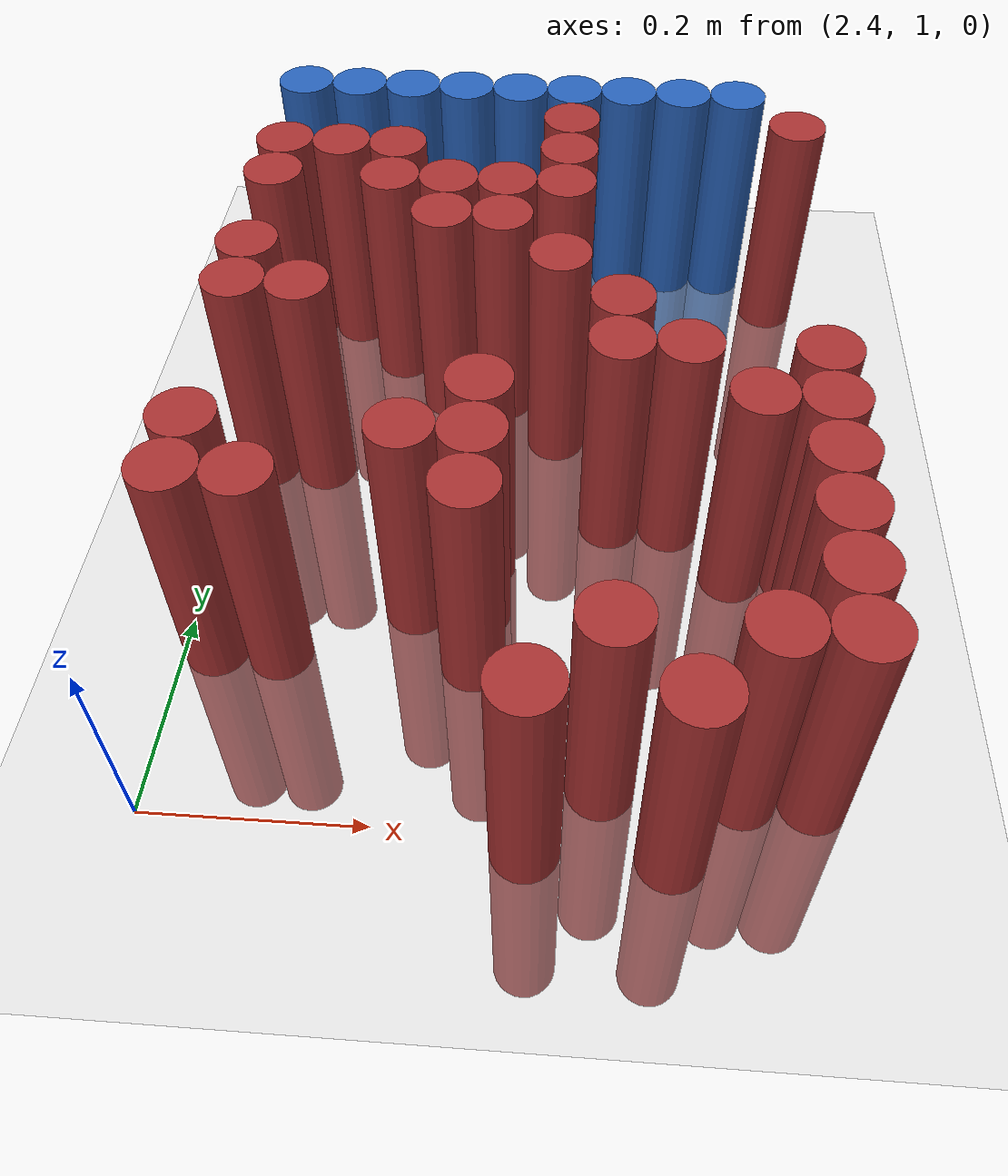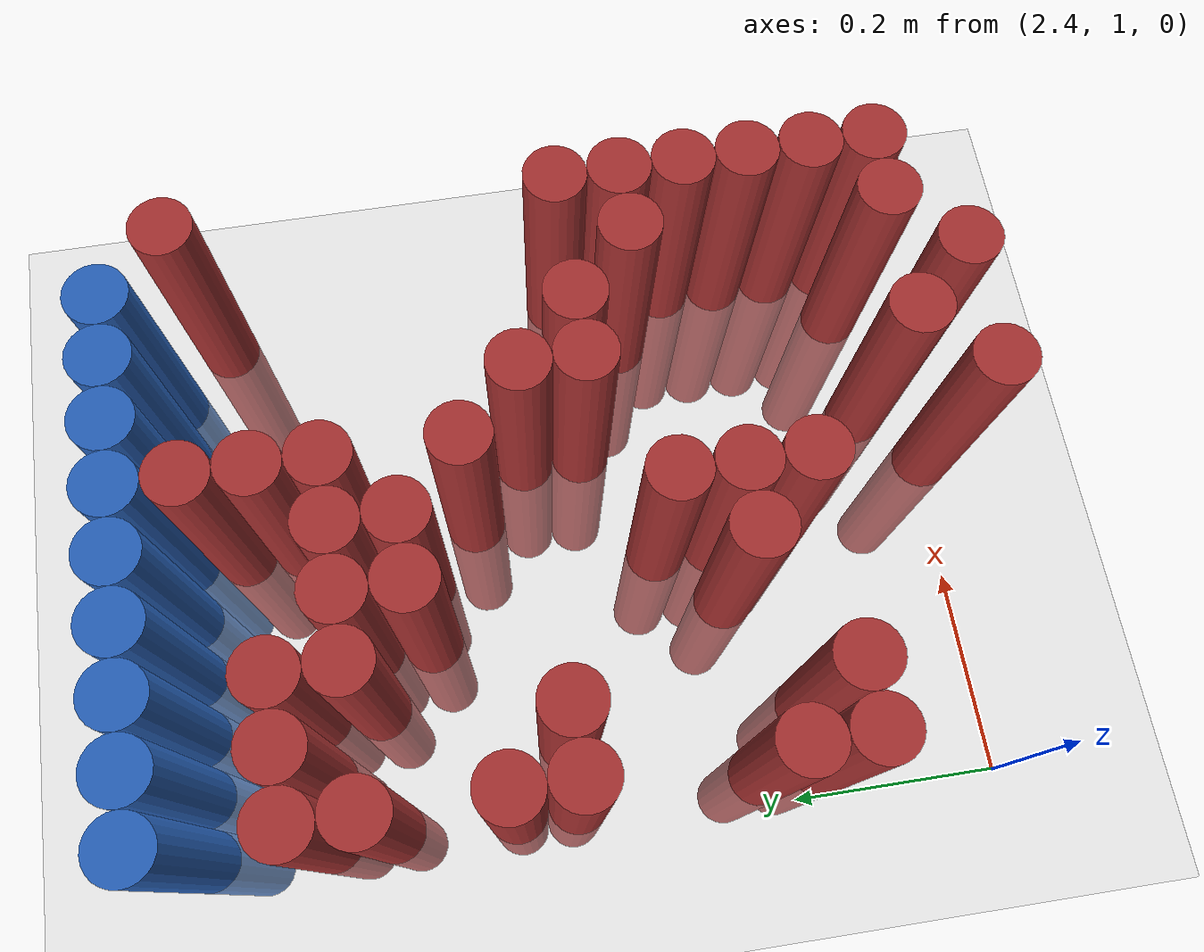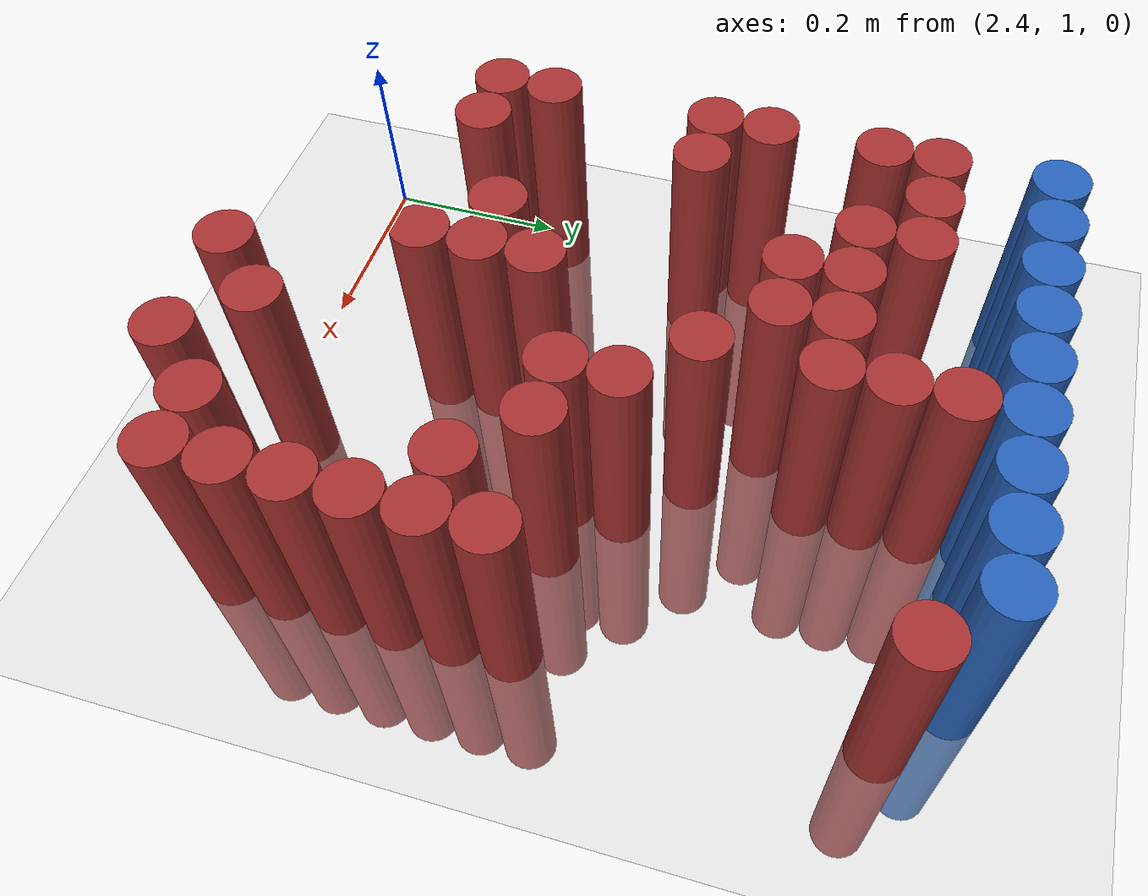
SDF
<sdf version="1.6">
 <world name="default">
  <model name="ground_plane">
   <static>1</static>
   <link name="link">
    <collision name="collision">
     <geometry><plane><normal>0 0 1</normal><size>100 100</size></plane></geometry>
     <surface><friction><ode><mu>100</mu><mu2>50</mu2></ode></friction></surface>
    </collision>
    <visual name="visual">
     <cast_shadows>0</cast_shadows>
     <geometry><plane><normal>0 0 1</normal><size>100 100</size></plane></geometry>
     <material>
      <script><uri>file://media/materials/scripts/gazebo.material</uri><name>Gazebo/Grey</name></script>
     </material>
    </visual>
   </link>
  </model>
  <model name="unit_cylinder_101">
   <static>1</static>
   <pose>2.430000 1.770000 0.000000 0.000000 0.000000 0.000000</pose>
   <link name="link">
    <inertial>
     <mass>1</mass>
     <inertia><ixx>0.145833</ixx><ixy>0</ixy><ixz>0</ixz><iyy>0.145833</iyy><iyz>0</iyz><izz>0.125</izz></inertia>
    </inertial>
    <collision name="collision">
     <geometry><cylinder><radius>0.030000</radius><length>0.5</length></cylinder></geometry>
    </collision>
    <visual name="visual">
     <geometry><cylinder><radius>0.030000</radius><length>0.5</length></cylinder></geometry>
     <material>
      <ambient>0.152000 0.379000 0.720000 1</ambient>
      <diffuse>0.152000 0.379000 0.720000 1</diffuse>
     </material>
     <material>
      <script><name>Gazebo/Grey</name><uri>file://media/materials/scripts/gazebo.material</uri></script>
     </material>
    </visual>
   </link>
  </model>
  <model name="unit_cylinder_102">
   <static>1</static>
   <pose>2.490000 1.770000 0.000000 0.000000 0.000000 0.000000</pose>
   <link name="link">
    <inertial>
     <mass>1</mass>
     <inertia><ixx>0.145833</ixx><ixy>0</ixy><ixz>0</ixz><iyy>0.145833</iyy><iyz>0</iyz><izz>0.125</izz></inertia>
    </inertial>
    <collision name="collision">
     <geometry><cylinder><radius>0.030000</radius><length>0.5</length></cylinder></geometry>
    </collision>
    <visual name="visual">
     <geometry><cylinder><radius>0.030000</radius><length>0.5</length></cylinder></geometry>
     <material>
      <ambient>0.152000 0.379000 0.720000 1</ambient>
      <diffuse>0.152000 0.379000 0.720000 1</diffuse>
     </material>
     <material>
      <script><name>Gazebo/Grey</name><uri>file://media/materials/scripts/gazebo.material</uri></script>
     </material>
    </visual>
   </link>
  </model>
  <model name="unit_cylinder_103">
   <static>1</static>
   <pose>2.550000 1.770000 0.000000 0.000000 0.000000 0.000000</pose>
   <link name="link">
    <inertial>
     <mass>1</mass>
     <inertia><ixx>0.145833</ixx><ixy>0</ixy><ixz>0</ixz><iyy>0.145833</iyy><iyz>0</iyz><izz>0.125</izz></inertia>
    </inertial>
    <collision name="collision">
     <geometry><cylinder><radius>0.030000</radius><length>0.5</length></cylinder></geometry>
    </collision>
    <visual name="visual">
     <geometry><cylinder><radius>0.030000</radius><length>0.5</length></cylinder></geometry>
     <material>
      <ambient>0.152000 0.379000 0.720000 1</ambient>
      <diffuse>0.152000 0.379000 0.720000 1</diffuse>
     </material>
     <material>
      <script><name>Gazebo/Grey</name><uri>file://media/materials/scripts/gazebo.material</uri></script>
     </material>
    </visual>
   </link>
  </model>
  <model name="unit_cylinder_104">
   <static>1</static>
   <pose>2.610000 1.770000 0.000000 0.000000 0.000000 0.000000</pose>
   <link name="link">
    <inertial>
     <mass>1</mass>
     <inertia><ixx>0.145833</ixx><ixy>0</ixy><ixz>0</ixz><iyy>0.145833</iyy><iyz>0</iyz><izz>0.125</izz></inertia>
    </inertial>
    <collision name="collision">
     <geometry><cylinder><radius>0.030000</radius><length>0.5</length></cylinder></geometry>
    </collision>
    <visual name="visual">
     <geometry><cylinder><radius>0.030000</radius><length>0.5</length></cylinder></geometry>
     <material>
      <ambient>0.152000 0.379000 0.720000 1</ambient>
      <diffuse>0.152000 0.379000 0.720000 1</diffuse>
     </material>
     <material>
      <script><name>Gazebo/Grey</name><uri>file://media/materials/scripts/gazebo.material</uri></script>
     </material>
    </visual>
   </link>
  </model>
  <model name="unit_cylinder_105">
   <static>1</static>
   <pose>2.670000 1.770000 0.000000 0.000000 0.000000 0.000000</pose>
   <link name="link">
    <inertial>
     <mass>1</mass>
     <inertia><ixx>0.145833</ixx><ixy>0</ixy><ixz>0</ixz><iyy>0.145833</iyy><iyz>0</iyz><izz>0.125</izz></inertia>
    </inertial>
    <collision name="collision">
     <geometry><cylinder><radius>0.030000</radius><length>0.5</length></cylinder></geometry>
    </collision>
    <visual name="visual">
     <geometry><cylinder><radius>0.030000</radius><length>0.5</length></cylinder></geometry>
     <material>
      <ambient>0.152000 0.379000 0.720000 1</ambient>
      <diffuse>0.152000 0.379000 0.720000 1</diffuse>
     </material>
     <material>
      <script><name>Gazebo/Grey</name><uri>file://media/materials/scripts/gazebo.material</uri></script>
     </material>
    </visual>
   </link>
  </model>
  <model name="unit_cylinder_106">
   <static>1</static>
   <pose>2.730000 1.770000 0.000000 0.000000 0.000000 0.000000</pose>
   <link name="link">
    <inertial>
     <mass>1</mass>
     <inertia><ixx>0.145833</ixx><ixy>0</ixy><ixz>0</ixz><iyy>0.145833</iyy><iyz>0</iyz><izz>0.125</izz></inertia>
    </inertial>
    <collision name="collision">
     <geometry><cylinder><radius>0.030000</radius><length>0.5</length></cylinder></geometry>
    </collision>
    <visual name="visual">
     <geometry><cylinder><radius>0.030000</radius><length>0.5</length></cylinder></geometry>
     <material>
      <ambient>0.152000 0.379000 0.720000 1</ambient>
      <diffuse>0.152000 0.379000 0.720000 1</diffuse>
     </material>
     <material>
      <script><name>Gazebo/Grey</name><uri>file://media/materials/scripts/gazebo.material</uri></script>
     </material>
    </visual>
   </link>
  </model>
  <model name="unit_cylinder_107">
   <static>1</static>
   <pose>2.790000 1.770000 0.000000 0.000000 0.000000 0.000000</pose>
   <link name="link">
    <inertial>
     <mass>1</mass>
     <inertia><ixx>0.145833</ixx><ixy>0</ixy><ixz>0</ixz><iyy>0.145833</iyy><iyz>0</iyz><izz>0.125</izz></inertia>
    </inertial>
    <collision name="collision">
     <geometry><cylinder><radius>0.030000</radius><length>0.5</length></cylinder></geometry>
    </collision>
    <visual name="visual">
     <geometry><cylinder><radius>0.030000</radius><length>0.5</length></cylinder></geometry>
     <material>
      <ambient>0.152000 0.379000 0.720000 1</ambient>
      <diffuse>0.152000 0.379000 0.720000 1</diffuse>
     </material>
     <material>
      <script><name>Gazebo/Grey</name><uri>file://media/materials/scripts/gazebo.material</uri></script>
     </material>
    </visual>
   </link>
  </model>
  <model name="unit_cylinder_108">
   <static>1</static>
   <pose>2.850000 1.770000 0.000000 0.000000 0.000000 0.000000</pose>
   <link name="link">
    <inertial>
     <mass>1</mass>
     <inertia><ixx>0.145833</ixx><ixy>0</ixy><ixz>0</ixz><iyy>0.145833</iyy><iyz>0</iyz><izz>0.125</izz></inertia>
    </inertial>
    <collision name="collision">
     <geometry><cylinder><radius>0.030000</radius><length>0.5</length></cylinder></geometry>
    </collision>
    <visual name="visual">
     <geometry><cylinder><radius>0.030000</radius><length>0.5</length></cylinder></geometry>
     <material>
      <ambient>0.152000 0.379000 0.720000 1</ambient>
      <diffuse>0.152000 0.379000 0.720000 1</diffuse>
     </material>
     <material>
      <script><name>Gazebo/Grey</name><uri>file://media/materials/scripts/gazebo.material</uri></script>
     </material>
    </visual>
   </link>
  </model>
  <model name="unit_cylinder_109">
   <static>1</static>
   <pose>2.910000 1.770000 0.000000 0.000000 0.000000 0.000000</pose>
   <link name="link">
    <inertial>
     <mass>1</mass>
     <inertia><ixx>0.145833</ixx><ixy>0</ixy><ixz>0</ixz><iyy>0.145833</iyy><iyz>0</iyz><izz>0.125</izz></inertia>
    </inertial>
    <collision name="collision">
     <geometry><cylinder><radius>0.030000</radius><length>0.5</length></cylinder></geometry>
    </collision>
    <visual name="visual">
     <geometry><cylinder><radius>0.030000</radius><length>0.5</length></cylinder></geometry>
     <material>
      <ambient>0.152000 0.379000 0.720000 1</ambient>
      <diffuse>0.152000 0.379000 0.720000 1</diffuse>
     </material>
     <material>
      <script><name>Gazebo/Grey</name><uri>file://media/materials/scripts/gazebo.material</uri></script>
     </material>
    </visual>
   </link>
  </model>
  <model name="unit_cylinder_127">
   <static>1</static>
   <pose>2.730000 1.710000 0.000000 0.000000 0.000000 0.000000</pose>
   <link name="link">
    <inertial>
     <mass>1</mass>
     <inertia><ixx>0.145833</ixx><ixy>0</ixy><ixz>0</ixz><iyy>0.145833</iyy><iyz>0</iyz><izz>0.125</izz></inertia>
    </inertial>
    <collision name="collision">
     <geometry><cylinder><radius>0.030000</radius><length>0.5</length></cylinder></geometry>
    </collision>
    <visual name="visual">
     <geometry><cylinder><radius>0.030000</radius><length>0.5</length></cylinder></geometry>
     <material>
      <ambient>0.648000 0.192000 0.192000 1</ambient>
      <diffuse>0.648000 0.192000 0.192000 1</diffuse>
     </material>
     <material>
      <script><name>Gazebo/Grey</name><uri>file://media/materials/scripts/gazebo.material</uri></script>
     </material>
    </visual>
   </link>
  </model>
  <model name="unit_cylinder_128">
   <static>1</static>
   <pose>2.970000 1.710000 0.000000 0.000000 0.000000 0.000000</pose>
   <link name="link">
    <inertial>
     <mass>1</mass>
     <inertia><ixx>0.145833</ixx><ixy>0</ixy><ixz>0</ixz><iyy>0.145833</iyy><iyz>0</iyz><izz>0.125</izz></inertia>
    </inertial>
    <collision name="collision">
     <geometry><cylinder><radius>0.030000</radius><length>0.5</length></cylinder></geometry>
    </collision>
    <visual name="visual">
     <geometry><cylinder><radius>0.030000</radius><length>0.5</length></cylinder></geometry>
     <material>
      <ambient>0.648000 0.192000 0.192000 1</ambient>
      <diffuse>0.648000 0.192000 0.192000 1</diffuse>
     </material>
     <material>
      <script><name>Gazebo/Grey</name><uri>file://media/materials/scripts/gazebo.material</uri></script>
     </material>
    </visual>
   </link>
  </model>
  <model name="unit_cylinder_136">
   <static>1</static>
   <pose>2.430000 1.650000 0.000000 0.000000 0.000000 0.000000</pose>
   <link name="link">
    <inertial>
     <mass>1</mass>
     <inertia><ixx>0.145833</ixx><ixy>0</ixy><ixz>0</ixz><iyy>0.145833</iyy><iyz>0</iyz><izz>0.125</izz></inertia>
    </inertial>
    <collision name="collision">
     <geometry><cylinder><radius>0.030000</radius><length>0.5</length></cylinder></geometry>
    </collision>
    <visual name="visual">
     <geometry><cylinder><radius>0.030000</radius><length>0.5</length></cylinder></geometry>
     <material>
      <ambient>0.648000 0.192000 0.192000 1</ambient>
      <diffuse>0.648000 0.192000 0.192000 1</diffuse>
     </material>
     <material>
      <script><name>Gazebo/Grey</name><uri>file://media/materials/scripts/gazebo.material</uri></script>
     </material>
    </visual>
   </link>
  </model>
  <model name="unit_cylinder_137">
   <static>1</static>
   <pose>2.490000 1.650000 0.000000 0.000000 0.000000 0.000000</pose>
   <link name="link">
    <inertial>
     <mass>1</mass>
     <inertia><ixx>0.145833</ixx><ixy>0</ixy><ixz>0</ixz><iyy>0.145833</iyy><iyz>0</iyz><izz>0.125</izz></inertia>
    </inertial>
    <collision name="collision">
     <geometry><cylinder><radius>0.030000</radius><length>0.5</length></cylinder></geometry>
    </collision>
    <visual name="visual">
     <geometry><cylinder><radius>0.030000</radius><length>0.5</length></cylinder></geometry>
     <material>
      <ambient>0.648000 0.192000 0.192000 1</ambient>
      <diffuse>0.648000 0.192000 0.192000 1</diffuse>
     </material>
     <material>
      <script><name>Gazebo/Grey</name><uri>file://media/materials/scripts/gazebo.material</uri></script>
     </material>
    </visual>
   </link>
  </model>
  <model name="unit_cylinder_138">
   <static>1</static>
   <pose>2.550000 1.650000 0.000000 0.000000 0.000000 0.000000</pose>
   <link name="link">
    <inertial>
     <mass>1</mass>
     <inertia><ixx>0.145833</ixx><ixy>0</ixy><ixz>0</ixz><iyy>0.145833</iyy><iyz>0</iyz><izz>0.125</izz></inertia>
    </inertial>
    <collision name="collision">
     <geometry><cylinder><radius>0.030000</radius><length>0.5</length></cylinder></geometry>
    </collision>
    <visual name="visual">
     <geometry><cylinder><radius>0.030000</radius><length>0.5</length></cylinder></geometry>
     <material>
      <ambient>0.648000 0.192000 0.192000 1</ambient>
      <diffuse>0.648000 0.192000 0.192000 1</diffuse>
     </material>
     <material>
      <script><name>Gazebo/Grey</name><uri>file://media/materials/scripts/gazebo.material</uri></script>
     </material>
    </visual>
   </link>
  </model>
  <model name="unit_cylinder_139">
   <static>1</static>
   <pose>2.730000 1.650000 0.000000 0.000000 0.000000 0.000000</pose>
   <link name="link">
    <inertial>
     <mass>1</mass>
     <inertia><ixx>0.145833</ixx><ixy>0</ixy><ixz>0</ixz><iyy>0.145833</iyy><iyz>0</iyz><izz>0.125</izz></inertia>
    </inertial>
    <collision name="collision">
     <geometry><cylinder><radius>0.030000</radius><length>0.5</length></cylinder></geometry>
    </collision>
    <visual name="visual">
     <geometry><cylinder><radius>0.030000</radius><length>0.5</length></cylinder></geometry>
     <material>
      <ambient>0.648000 0.192000 0.192000 1</ambient>
      <diffuse>0.648000 0.192000 0.192000 1</diffuse>
     </material>
     <material>
      <script><name>Gazebo/Grey</name><uri>file://media/materials/scripts/gazebo.material</uri></script>
     </material>
    </visual>
   </link>
  </model>
  <model name="unit_cylinder_150">
   <static>1</static>
   <pose>2.430000 1.590000 0.000000 0.000000 0.000000 0.000000</pose>
   <link name="link">
    <inertial>
     <mass>1</mass>
     <inertia><ixx>0.145833</ixx><ixy>0</ixy><ixz>0</ixz><iyy>0.145833</iyy><iyz>0</iyz><izz>0.125</izz></inertia>
    </inertial>
    <collision name="collision">
     <geometry><cylinder><radius>0.030000</radius><length>0.5</length></cylinder></geometry>
    </collision>
    <visual name="visual">
     <geometry><cylinder><radius>0.030000</radius><length>0.5</length></cylinder></geometry>
     <material>
      <ambient>0.648000 0.192000 0.192000 1</ambient>
      <diffuse>0.648000 0.192000 0.192000 1</diffuse>
     </material>
     <material>
      <script><name>Gazebo/Grey</name><uri>file://media/materials/scripts/gazebo.material</uri></script>
     </material>
    </visual>
   </link>
  </model>
  <model name="unit_cylinder_151">
   <static>1</static>
   <pose>2.550000 1.590000 0.000000 0.000000 0.000000 0.000000</pose>
   <link name="link">
    <inertial>
     <mass>1</mass>
     <inertia><ixx>0.145833</ixx><ixy>0</ixy><ixz>0</ixz><iyy>0.145833</iyy><iyz>0</iyz><izz>0.125</izz></inertia>
    </inertial>
    <collision name="collision">
     <geometry><cylinder><radius>0.030000</radius><length>0.5</length></cylinder></geometry>
    </collision>
    <visual name="visual">
     <geometry><cylinder><radius>0.030000</radius><length>0.5</length></cylinder></geometry>
     <material>
      <ambient>0.648000 0.192000 0.192000 1</ambient>
      <diffuse>0.648000 0.192000 0.192000 1</diffuse>
     </material>
     <material>
      <script><name>Gazebo/Grey</name><uri>file://media/materials/scripts/gazebo.material</uri></script>
     </material>
    </visual>
   </link>
  </model>
  <model name="unit_cylinder_152">
   <static>1</static>
   <pose>2.610000 1.590000 0.000000 0.000000 0.000000 0.000000</pose>
   <link name="link">
    <inertial>
     <mass>1</mass>
     <inertia><ixx>0.145833</ixx><ixy>0</ixy><ixz>0</ixz><iyy>0.145833</iyy><iyz>0</iyz><izz>0.125</izz></inertia>
    </inertial>
    <collision name="collision">
     <geometry><cylinder><radius>0.030000</radius><length>0.5</length></cylinder></geometry>
    </collision>
    <visual name="visual">
     <geometry><cylinder><radius>0.030000</radius><length>0.5</length></cylinder></geometry>
     <material>
      <ambient>0.648000 0.192000 0.192000 1</ambient>
      <diffuse>0.648000 0.192000 0.192000 1</diffuse>
     </material>
     <material>
      <script><name>Gazebo/Grey</name><uri>file://media/materials/scripts/gazebo.material</uri></script>
     </material>
    </visual>
   </link>
  </model>
  <model name="unit_cylinder_153">
   <static>1</static>
   <pose>2.670000 1.590000 0.000000 0.000000 0.000000 0.000000</pose>
   <link name="link">
    <inertial>
     <mass>1</mass>
     <inertia><ixx>0.145833</ixx><ixy>0</ixy><ixz>0</ixz><iyy>0.145833</iyy><iyz>0</iyz><izz>0.125</izz></inertia>
    </inertial>
    <collision name="collision">
     <geometry><cylinder><radius>0.030000</radius><length>0.5</length></cylinder></geometry>
    </collision>
    <visual name="visual">
     <geometry><cylinder><radius>0.030000</radius><length>0.5</length></cylinder></geometry>
     <material>
      <ambient>0.648000 0.192000 0.192000 1</ambient>
      <diffuse>0.648000 0.192000 0.192000 1</diffuse>
     </material>
     <material>
      <script><name>Gazebo/Grey</name><uri>file://media/materials/scripts/gazebo.material</uri></script>
     </material>
    </visual>
   </link>
  </model>
  <model name="unit_cylinder_154">
   <static>1</static>
   <pose>2.730000 1.590000 0.000000 0.000000 0.000000 0.000000</pose>
   <link name="link">
    <inertial>
     <mass>1</mass>
     <inertia><ixx>0.145833</ixx><ixy>0</ixy><ixz>0</ixz><iyy>0.145833</iyy><iyz>0</iyz><izz>0.125</izz></inertia>
    </inertial>
    <collision name="collision">
     <geometry><cylinder><radius>0.030000</radius><length>0.5</length></cylinder></geometry>
    </collision>
    <visual name="visual">
     <geometry><cylinder><radius>0.030000</radius><length>0.5</length></cylinder></geometry>
     <material>
      <ambient>0.648000 0.192000 0.192000 1</ambient>
      <diffuse>0.648000 0.192000 0.192000 1</diffuse>
     </material>
     <material>
      <script><name>Gazebo/Grey</name><uri>file://media/materials/scripts/gazebo.material</uri></script>
     </material>
    </visual>
   </link>
  </model>
  <model name="unit_cylinder_161">
   <static>1</static>
   <pose>2.610000 1.530000 0.000000 0.000000 0.000000 0.000000</pose>
   <link name="link">
    <inertial>
     <mass>1</mass>
     <inertia><ixx>0.145833</ixx><ixy>0</ixy><ixz>0</ixz><iyy>0.145833</iyy><iyz>0</iyz><izz>0.125</izz></inertia>
    </inertial>
    <collision name="collision">
     <geometry><cylinder><radius>0.030000</radius><length>0.5</length></cylinder></geometry>
    </collision>
    <visual name="visual">
     <geometry><cylinder><radius>0.030000</radius><length>0.5</length></cylinder></geometry>
     <material>
      <ambient>0.648000 0.192000 0.192000 1</ambient>
      <diffuse>0.648000 0.192000 0.192000 1</diffuse>
     </material>
     <material>
      <script><name>Gazebo/Grey</name><uri>file://media/materials/scripts/gazebo.material</uri></script>
     </material>
    </visual>
   </link>
  </model>
  <model name="unit_cylinder_162">
   <static>1</static>
   <pose>2.670000 1.530000 0.000000 0.000000 0.000000 0.000000</pose>
   <link name="link">
    <inertial>
     <mass>1</mass>
     <inertia><ixx>0.145833</ixx><ixy>0</ixy><ixz>0</ixz><iyy>0.145833</iyy><iyz>0</iyz><izz>0.125</izz></inertia>
    </inertial>
    <collision name="collision">
     <geometry><cylinder><radius>0.030000</radius><length>0.5</length></cylinder></geometry>
    </collision>
    <visual name="visual">
     <geometry><cylinder><radius>0.030000</radius><length>0.5</length></cylinder></geometry>
     <material>
      <ambient>0.648000 0.192000 0.192000 1</ambient>
      <diffuse>0.648000 0.192000 0.192000 1</diffuse>
     </material>
     <material>
      <script><name>Gazebo/Grey</name><uri>file://media/materials/scripts/gazebo.material</uri></script>
     </material>
    </visual>
   </link>
  </model>
  <model name="unit_cylinder_166">
   <static>1</static>
   <pose>2.430000 1.470000 0.000000 0.000000 0.000000 0.000000</pose>
   <link name="link">
    <inertial>
     <mass>1</mass>
     <inertia><ixx>0.145833</ixx><ixy>0</ixy><ixz>0</ixz><iyy>0.145833</iyy><iyz>0</iyz><izz>0.125</izz></inertia>
    </inertial>
    <collision name="collision">
     <geometry><cylinder><radius>0.030000</radius><length>0.5</length></cylinder></geometry>
    </collision>
    <visual name="visual">
     <geometry><cylinder><radius>0.030000</radius><length>0.5</length></cylinder></geometry>
     <material>
      <ambient>0.648000 0.192000 0.192000 1</ambient>
      <diffuse>0.648000 0.192000 0.192000 1</diffuse>
     </material>
     <material>
      <script><name>Gazebo/Grey</name><uri>file://media/materials/scripts/gazebo.material</uri></script>
     </material>
    </visual>
   </link>
  </model>
  <model name="unit_cylinder_167">
   <static>1</static>
   <pose>2.730000 1.470000 0.000000 0.000000 0.000000 0.000000</pose>
   <link name="link">
    <inertial>
     <mass>1</mass>
     <inertia><ixx>0.145833</ixx><ixy>0</ixy><ixz>0</ixz><iyy>0.145833</iyy><iyz>0</iyz><izz>0.125</izz></inertia>
    </inertial>
    <collision name="collision">
     <geometry><cylinder><radius>0.030000</radius><length>0.5</length></cylinder></geometry>
    </collision>
    <visual name="visual">
     <geometry><cylinder><radius>0.030000</radius><length>0.5</length></cylinder></geometry>
     <material>
      <ambient>0.648000 0.192000 0.192000 1</ambient>
      <diffuse>0.648000 0.192000 0.192000 1</diffuse>
     </material>
     <material>
      <script><name>Gazebo/Grey</name><uri>file://media/materials/scripts/gazebo.material</uri></script>
     </material>
    </visual>
   </link>
  </model>
  <model name="unit_cylinder_171">
   <static>1</static>
   <pose>2.430000 1.410000 0.000000 0.000000 0.000000 0.000000</pose>
   <link name="link">
    <inertial>
     <mass>1</mass>
     <inertia><ixx>0.145833</ixx><ixy>0</ixy><ixz>0</ixz><iyy>0.145833</iyy><iyz>0</iyz><izz>0.125</izz></inertia>
    </inertial>
    <collision name="collision">
     <geometry><cylinder><radius>0.030000</radius><length>0.5</length></cylinder></geometry>
    </collision>
    <visual name="visual">
     <geometry><cylinder><radius>0.030000</radius><length>0.5</length></cylinder></geometry>
     <material>
      <ambient>0.648000 0.192000 0.192000 1</ambient>
      <diffuse>0.648000 0.192000 0.192000 1</diffuse>
     </material>
     <material>
      <script><name>Gazebo/Grey</name><uri>file://media/materials/scripts/gazebo.material</uri></script>
     </material>
    </visual>
   </link>
  </model>
  <model name="unit_cylinder_172">
   <static>1</static>
   <pose>2.490000 1.410000 0.000000 0.000000 0.000000 0.000000</pose>
   <link name="link">
    <inertial>
     <mass>1</mass>
     <inertia><ixx>0.145833</ixx><ixy>0</ixy><ixz>0</ixz><iyy>0.145833</iyy><iyz>0</iyz><izz>0.125</izz></inertia>
    </inertial>
    <collision name="collision">
     <geometry><cylinder><radius>0.030000</radius><length>0.5</length></cylinder></geometry>
    </collision>
    <visual name="visual">
     <geometry><cylinder><radius>0.030000</radius><length>0.5</length></cylinder></geometry>
     <material>
      <ambient>0.648000 0.192000 0.192000 1</ambient>
      <diffuse>0.648000 0.192000 0.192000 1</diffuse>
     </material>
     <material>
      <script><name>Gazebo/Grey</name><uri>file://media/materials/scripts/gazebo.material</uri></script>
     </material>
    </visual>
   </link>
  </model>
  <model name="unit_cylinder_173">
   <static>1</static>
   <pose>2.790000 1.410000 0.000000 0.000000 0.000000 0.000000</pose>
   <link name="link">
    <inertial>
     <mass>1</mass>
     <inertia><ixx>0.145833</ixx><ixy>0</ixy><ixz>0</ixz><iyy>0.145833</iyy><iyz>0</iyz><izz>0.125</izz></inertia>
    </inertial>
    <collision name="collision">
     <geometry><cylinder><radius>0.030000</radius><length>0.5</length></cylinder></geometry>
    </collision>
    <visual name="visual">
     <geometry><cylinder><radius>0.030000</radius><length>0.5</length></cylinder></geometry>
     <material>
      <ambient>0.648000 0.192000 0.192000 1</ambient>
      <diffuse>0.648000 0.192000 0.192000 1</diffuse>
     </material>
     <material>
      <script><name>Gazebo/Grey</name><uri>file://media/materials/scripts/gazebo.material</uri></script>
     </material>
    </visual>
   </link>
  </model>
  <model name="unit_cylinder_177">
   <static>1</static>
   <pose>2.790000 1.350000 0.000000 0.000000 0.000000 0.000000</pose>
   <link name="link">
    <inertial>
     <mass>1</mass>
     <inertia><ixx>0.145833</ixx><ixy>0</ixy><ixz>0</ixz><iyy>0.145833</iyy><iyz>0</iyz><izz>0.125</izz></inertia>
    </inertial>
    <collision name="collision">
     <geometry><cylinder><radius>0.030000</radius><length>0.5</length></cylinder></geometry>
    </collision>
    <visual name="visual">
     <geometry><cylinder><radius>0.030000</radius><length>0.5</length></cylinder></geometry>
     <material>
      <ambient>0.648000 0.192000 0.192000 1</ambient>
      <diffuse>0.648000 0.192000 0.192000 1</diffuse>
     </material>
     <material>
      <script><name>Gazebo/Grey</name><uri>file://media/materials/scripts/gazebo.material</uri></script>
     </material>
    </visual>
   </link>
  </model>
  <model name="unit_cylinder_178">
   <static>1</static>
   <pose>2.850000 1.350000 0.000000 0.000000 0.000000 0.000000</pose>
   <link name="link">
    <inertial>
     <mass>1</mass>
     <inertia><ixx>0.145833</ixx><ixy>0</ixy><ixz>0</ixz><iyy>0.145833</iyy><iyz>0</iyz><izz>0.125</izz></inertia>
    </inertial>
    <collision name="collision">
     <geometry><cylinder><radius>0.030000</radius><length>0.5</length></cylinder></geometry>
    </collision>
    <visual name="visual">
     <geometry><cylinder><radius>0.030000</radius><length>0.5</length></cylinder></geometry>
     <material>
      <ambient>0.648000 0.192000 0.192000 1</ambient>
      <diffuse>0.648000 0.192000 0.192000 1</diffuse>
     </material>
     <material>
      <script><name>Gazebo/Grey</name><uri>file://media/materials/scripts/gazebo.material</uri></script>
     </material>
    </visual>
   </link>
  </model>
  <model name="unit_cylinder_179">
   <static>1</static>
   <pose>2.970000 1.350000 0.000000 0.000000 0.000000 0.000000</pose>
   <link name="link">
    <inertial>
     <mass>1</mass>
     <inertia><ixx>0.145833</ixx><ixy>0</ixy><ixz>0</ixz><iyy>0.145833</iyy><iyz>0</iyz><izz>0.125</izz></inertia>
    </inertial>
    <collision name="collision">
     <geometry><cylinder><radius>0.030000</radius><length>0.5</length></cylinder></geometry>
    </collision>
    <visual name="visual">
     <geometry><cylinder><radius>0.030000</radius><length>0.5</length></cylinder></geometry>
     <material>
      <ambient>0.648000 0.192000 0.192000 1</ambient>
      <diffuse>0.648000 0.192000 0.192000 1</diffuse>
     </material>
     <material>
      <script><name>Gazebo/Grey</name><uri>file://media/materials/scripts/gazebo.material</uri></script>
     </material>
    </visual>
   </link>
  </model>
  <model name="unit_cylinder_186">
   <static>1</static>
   <pose>2.670000 1.290000 0.000000 0.000000 0.000000 0.000000</pose>
   <link name="link">
    <inertial>
     <mass>1</mass>
     <inertia><ixx>0.145833</ixx><ixy>0</ixy><ixz>0</ixz><iyy>0.145833</iyy><iyz>0</iyz><izz>0.125</izz></inertia>
    </inertial>
    <collision name="collision">
     <geometry><cylinder><radius>0.030000</radius><length>0.5</length></cylinder></geometry>
    </collision>
    <visual name="visual">
     <geometry><cylinder><radius>0.030000</radius><length>0.5</length></cylinder></geometry>
     <material>
      <ambient>0.648000 0.192000 0.192000 1</ambient>
      <diffuse>0.648000 0.192000 0.192000 1</diffuse>
     </material>
     <material>
      <script><name>Gazebo/Grey</name><uri>file://media/materials/scripts/gazebo.material</uri></script>
     </material>
    </visual>
   </link>
  </model>
  <model name="unit_cylinder_187">
   <static>1</static>
   <pose>2.910000 1.290000 0.000000 0.000000 0.000000 0.000000</pose>
   <link name="link">
    <inertial>
     <mass>1</mass>
     <inertia><ixx>0.145833</ixx><ixy>0</ixy><ixz>0</ixz><iyy>0.145833</iyy><iyz>0</iyz><izz>0.125</izz></inertia>
    </inertial>
    <collision name="collision">
     <geometry><cylinder><radius>0.030000</radius><length>0.5</length></cylinder></geometry>
    </collision>
    <visual name="visual">
     <geometry><cylinder><radius>0.030000</radius><length>0.5</length></cylinder></geometry>
     <material>
      <ambient>0.648000 0.192000 0.192000 1</ambient>
      <diffuse>0.648000 0.192000 0.192000 1</diffuse>
     </material>
     <material>
      <script><name>Gazebo/Grey</name><uri>file://media/materials/scripts/gazebo.material</uri></script>
     </material>
    </visual>
   </link>
  </model>
  <model name="unit_cylinder_188">
   <static>1</static>
   <pose>2.970000 1.290000 0.000000 0.000000 0.000000 0.000000</pose>
   <link name="link">
    <inertial>
     <mass>1</mass>
     <inertia><ixx>0.145833</ixx><ixy>0</ixy><ixz>0</ixz><iyy>0.145833</iyy><iyz>0</iyz><izz>0.125</izz></inertia>
    </inertial>
    <collision name="collision">
     <geometry><cylinder><radius>0.030000</radius><length>0.5</length></cylinder></geometry>
    </collision>
    <visual name="visual">
     <geometry><cylinder><radius>0.030000</radius><length>0.5</length></cylinder></geometry>
     <material>
      <ambient>0.648000 0.192000 0.192000 1</ambient>
      <diffuse>0.648000 0.192000 0.192000 1</diffuse>
     </material>
     <material>
      <script><name>Gazebo/Grey</name><uri>file://media/materials/scripts/gazebo.material</uri></script>
     </material>
    </visual>
   </link>
  </model>
  <model name="unit_cylinder_193">
   <static>1</static>
   <pose>2.430000 1.230000 0.000000 0.000000 0.000000 0.000000</pose>
   <link name="link">
    <inertial>
     <mass>1</mass>
     <inertia><ixx>0.145833</ixx><ixy>0</ixy><ixz>0</ixz><iyy>0.145833</iyy><iyz>0</iyz><izz>0.125</izz></inertia>
    </inertial>
    <collision name="collision">
     <geometry><cylinder><radius>0.030000</radius><length>0.5</length></cylinder></geometry>
    </collision>
    <visual name="visual">
     <geometry><cylinder><radius>0.030000</radius><length>0.5</length></cylinder></geometry>
     <material>
      <ambient>0.648000 0.192000 0.192000 1</ambient>
      <diffuse>0.648000 0.192000 0.192000 1</diffuse>
     </material>
     <material>
      <script><name>Gazebo/Grey</name><uri>file://media/materials/scripts/gazebo.material</uri></script>
     </material>
    </visual>
   </link>
  </model>
  <model name="unit_cylinder_194">
   <static>1</static>
   <pose>2.610000 1.230000 0.000000 0.000000 0.000000 0.000000</pose>
   <link name="link">
    <inertial>
     <mass>1</mass>
     <inertia><ixx>0.145833</ixx><ixy>0</ixy><ixz>0</ixz><iyy>0.145833</iyy><iyz>0</iyz><izz>0.125</izz></inertia>
    </inertial>
    <collision name="collision">
     <geometry><cylinder><radius>0.030000</radius><length>0.5</length></cylinder></geometry>
    </collision>
    <visual name="visual">
     <geometry><cylinder><radius>0.030000</radius><length>0.5</length></cylinder></geometry>
     <material>
      <ambient>0.648000 0.192000 0.192000 1</ambient>
      <diffuse>0.648000 0.192000 0.192000 1</diffuse>
     </material>
     <material>
      <script><name>Gazebo/Grey</name><uri>file://media/materials/scripts/gazebo.material</uri></script>
     </material>
    </visual>
   </link>
  </model>
  <model name="unit_cylinder_195">
   <static>1</static>
   <pose>2.670000 1.230000 0.000000 0.000000 0.000000 0.000000</pose>
   <link name="link">
    <inertial>
     <mass>1</mass>
     <inertia><ixx>0.145833</ixx><ixy>0</ixy><ixz>0</ixz><iyy>0.145833</iyy><iyz>0</iyz><izz>0.125</izz></inertia>
    </inertial>
    <collision name="collision">
     <geometry><cylinder><radius>0.030000</radius><length>0.5</length></cylinder></geometry>
    </collision>
    <visual name="visual">
     <geometry><cylinder><radius>0.030000</radius><length>0.5</length></cylinder></geometry>
     <material>
      <ambient>0.648000 0.192000 0.192000 1</ambient>
      <diffuse>0.648000 0.192000 0.192000 1</diffuse>
     </material>
     <material>
      <script><name>Gazebo/Grey</name><uri>file://media/materials/scripts/gazebo.material</uri></script>
     </material>
    </visual>
   </link>
  </model>
  <model name="unit_cylinder_196">
   <static>1</static>
   <pose>2.970000 1.230000 0.000000 0.000000 0.000000 0.000000</pose>
   <link name="link">
    <inertial>
     <mass>1</mass>
     <inertia><ixx>0.145833</ixx><ixy>0</ixy><ixz>0</ixz><iyy>0.145833</iyy><iyz>0</iyz><izz>0.125</izz></inertia>
    </inertial>
    <collision name="collision">
     <geometry><cylinder><radius>0.030000</radius><length>0.5</length></cylinder></geometry>
    </collision>
    <visual name="visual">
     <geometry><cylinder><radius>0.030000</radius><length>0.5</length></cylinder></geometry>
     <material>
      <ambient>0.648000 0.192000 0.192000 1</ambient>
      <diffuse>0.648000 0.192000 0.192000 1</diffuse>
     </material>
     <material>
      <script><name>Gazebo/Grey</name><uri>file://media/materials/scripts/gazebo.material</uri></script>
     </material>
    </visual>
   </link>
  </model>
  <model name="unit_cylinder_198">
   <static>1</static>
   <pose>2.430000 1.170000 0.000000 0.000000 0.000000 0.000000</pose>
   <link name="link">
    <inertial>
     <mass>1</mass>
     <inertia><ixx>0.145833</ixx><ixy>0</ixy><ixz>0</ixz><iyy>0.145833</iyy><iyz>0</iyz><izz>0.125</izz></inertia>
    </inertial>
    <collision name="collision">
     <geometry><cylinder><radius>0.030000</radius><length>0.5</length></cylinder></geometry>
    </collision>
    <visual name="visual">
     <geometry><cylinder><radius>0.030000</radius><length>0.5</length></cylinder></geometry>
     <material>
      <ambient>0.648000 0.192000 0.192000 1</ambient>
      <diffuse>0.648000 0.192000 0.192000 1</diffuse>
     </material>
     <material>
      <script><name>Gazebo/Grey</name><uri>file://media/materials/scripts/gazebo.material</uri></script>
     </material>
    </visual>
   </link>
  </model>
  <model name="unit_cylinder_199">
   <static>1</static>
   <pose>2.490000 1.170000 0.000000 0.000000 0.000000 0.000000</pose>
   <link name="link">
    <inertial>
     <mass>1</mass>
     <inertia><ixx>0.145833</ixx><ixy>0</ixy><ixz>0</ixz><iyy>0.145833</iyy><iyz>0</iyz><izz>0.125</izz></inertia>
    </inertial>
    <collision name="collision">
     <geometry><cylinder><radius>0.030000</radius><length>0.5</length></cylinder></geometry>
    </collision>
    <visual name="visual">
     <geometry><cylinder><radius>0.030000</radius><length>0.5</length></cylinder></geometry>
     <material>
      <ambient>0.648000 0.192000 0.192000 1</ambient>
      <diffuse>0.648000 0.192000 0.192000 1</diffuse>
     </material>
     <material>
      <script><name>Gazebo/Grey</name><uri>file://media/materials/scripts/gazebo.material</uri></script>
     </material>
    </visual>
   </link>
  </model>
  <model name="unit_cylinder_200">
   <static>1</static>
   <pose>2.670000 1.170000 0.000000 0.000000 0.000000 0.000000</pose>
   <link name="link">
    <inertial>
     <mass>1</mass>
     <inertia><ixx>0.145833</ixx><ixy>0</ixy><ixz>0</ixz><iyy>0.145833</iyy><iyz>0</iyz><izz>0.125</izz></inertia>
    </inertial>
    <collision name="collision">
     <geometry><cylinder><radius>0.030000</radius><length>0.5</length></cylinder></geometry>
    </collision>
    <visual name="visual">
     <geometry><cylinder><radius>0.030000</radius><length>0.5</length></cylinder></geometry>
     <material>
      <ambient>0.648000 0.192000 0.192000 1</ambient>
      <diffuse>0.648000 0.192000 0.192000 1</diffuse>
     </material>
     <material>
      <script><name>Gazebo/Grey</name><uri>file://media/materials/scripts/gazebo.material</uri></script>
     </material>
    </visual>
   </link>
  </model>
  <model name="unit_cylinder_201">
   <static>1</static>
   <pose>2.970000 1.170000 0.000000 0.000000 0.000000 0.000000</pose>
   <link name="link">
    <inertial>
     <mass>1</mass>
     <inertia><ixx>0.145833</ixx><ixy>0</ixy><ixz>0</ixz><iyy>0.145833</iyy><iyz>0</iyz><izz>0.125</izz></inertia>
    </inertial>
    <collision name="collision">
     <geometry><cylinder><radius>0.030000</radius><length>0.5</length></cylinder></geometry>
    </collision>
    <visual name="visual">
     <geometry><cylinder><radius>0.030000</radius><length>0.5</length></cylinder></geometry>
     <material>
      <ambient>0.648000 0.192000 0.192000 1</ambient>
      <diffuse>0.648000 0.192000 0.192000 1</diffuse>
     </material>
     <material>
      <script><name>Gazebo/Grey</name><uri>file://media/materials/scripts/gazebo.material</uri></script>
     </material>
    </visual>
   </link>
  </model>
  <model name="unit_cylinder_203">
   <static>1</static>
   <pose>2.970000 1.110000 0.000000 0.000000 0.000000 0.000000</pose>
   <link name="link">
    <inertial>
     <mass>1</mass>
     <inertia><ixx>0.145833</ixx><ixy>0</ixy><ixz>0</ixz><iyy>0.145833</iyy><iyz>0</iyz><izz>0.125</izz></inertia>
    </inertial>
    <collision name="collision">
     <geometry><cylinder><radius>0.030000</radius><length>0.5</length></cylinder></geometry>
    </collision>
    <visual name="visual">
     <geometry><cylinder><radius>0.030000</radius><length>0.5</length></cylinder></geometry>
     <material>
      <ambient>0.648000 0.192000 0.192000 1</ambient>
      <diffuse>0.648000 0.192000 0.192000 1</diffuse>
     </material>
     <material>
      <script><name>Gazebo/Grey</name><uri>file://media/materials/scripts/gazebo.material</uri></script>
     </material>
    </visual>
   </link>
  </model>
  <model name="unit_cylinder_208">
   <static>1</static>
   <pose>2.790000 1.050000 0.000000 0.000000 0.000000 0.000000</pose>
   <link name="link">
    <inertial>
     <mass>1</mass>
     <inertia><ixx>0.145833</ixx><ixy>0</ixy><ixz>0</ixz><iyy>0.145833</iyy><iyz>0</iyz><izz>0.125</izz></inertia>
    </inertial>
    <collision name="collision">
     <geometry><cylinder><radius>0.030000</radius><length>0.5</length></cylinder></geometry>
    </collision>
    <visual name="visual">
     <geometry><cylinder><radius>0.030000</radius><length>0.5</length></cylinder></geometry>
     <material>
      <ambient>0.648000 0.192000 0.192000 1</ambient>
      <diffuse>0.648000 0.192000 0.192000 1</diffuse>
     </material>
     <material>
      <script><name>Gazebo/Grey</name><uri>file://media/materials/scripts/gazebo.material</uri></script>
     </material>
    </visual>
   </link>
  </model>
  <model name="unit_cylinder_209">
   <static>1</static>
   <pose>2.910000 1.050000 0.000000 0.000000 0.000000 0.000000</pose>
   <link name="link">
    <inertial>
     <mass>1</mass>
     <inertia><ixx>0.145833</ixx><ixy>0</ixy><ixz>0</ixz><iyy>0.145833</iyy><iyz>0</iyz><izz>0.125</izz></inertia>
    </inertial>
    <collision name="collision">
     <geometry><cylinder><radius>0.030000</radius><length>0.5</length></cylinder></geometry>
    </collision>
    <visual name="visual">
     <geometry><cylinder><radius>0.030000</radius><length>0.5</length></cylinder></geometry>
     <material>
      <ambient>0.648000 0.192000 0.192000 1</ambient>
      <diffuse>0.648000 0.192000 0.192000 1</diffuse>
     </material>
     <material>
      <script><name>Gazebo/Grey</name><uri>file://media/materials/scripts/gazebo.material</uri></script>
     </material>
    </visual>
   </link>
  </model>
  <model name="unit_cylinder_210">
   <static>1</static>
   <pose>2.970000 1.050000 0.000000 0.000000 0.000000 0.000000</pose>
   <link name="link">
    <inertial>
     <mass>1</mass>
     <inertia><ixx>0.145833</ixx><ixy>0</ixy><ixz>0</ixz><iyy>0.145833</iyy><iyz>0</iyz><izz>0.125</izz></inertia>
    </inertial>
    <collision name="collision">
     <geometry><cylinder><radius>0.030000</radius><length>0.5</length></cylinder></geometry>
    </collision>
    <visual name="visual">
     <geometry><cylinder><radius>0.030000</radius><length>0.5</length></cylinder></geometry>
     <material>
      <ambient>0.648000 0.192000 0.192000 1</ambient>
      <diffuse>0.648000 0.192000 0.192000 1</diffuse>
     </material>
     <material>
      <script><name>Gazebo/Grey</name><uri>file://media/materials/scripts/gazebo.material</uri></script>
     </material>
    </visual>
   </link>
  </model>
  <model name="unit_cylinder_214">
   <static>1</static>
   <pose>2.730000 0.990000 0.000000 0.000000 0.000000 0.000000</pose>
   <link name="link">
    <inertial>
     <mass>1</mass>
     <inertia><ixx>0.145833</ixx><ixy>0</ixy><ixz>0</ixz><iyy>0.145833</iyy><iyz>0</iyz><izz>0.125</izz></inertia>
    </inertial>
    <collision name="collision">
     <geometry><cylinder><radius>0.030000</radius><length>0.5</length></cylinder></geometry>
    </collision>
    <visual name="visual">
     <geometry><cylinder><radius>0.030000</radius><length>0.5</length></cylinder></geometry>
     <material>
      <ambient>0.648000 0.192000 0.192000 1</ambient>
      <diffuse>0.648000 0.192000 0.192000 1</diffuse>
     </material>
     <material>
      <script><name>Gazebo/Grey</name><uri>file://media/materials/scripts/gazebo.material</uri></script>
     </material>
    </visual>
   </link>
  </model>
  <model name="unit_cylinder_215">
   <static>1</static>
   <pose>2.850000 0.990000 0.000000 0.000000 0.000000 0.000000</pose>
   <link name="link">
    <inertial>
     <mass>1</mass>
     <inertia><ixx>0.145833</ixx><ixy>0</ixy><ixz>0</ixz><iyy>0.145833</iyy><iyz>0</iyz><izz>0.125</izz></inertia>
    </inertial>
    <collision name="collision">
     <geometry><cylinder><radius>0.030000</radius><length>0.5</length></cylinder></geometry>
    </collision>
    <visual name="visual">
     <geometry><cylinder><radius>0.030000</radius><length>0.5</length></cylinder></geometry>
     <material>
      <ambient>0.648000 0.192000 0.192000 1</ambient>
      <diffuse>0.648000 0.192000 0.192000 1</diffuse>
     </material>
     <material>
      <script><name>Gazebo/Grey</name><uri>file://media/materials/scripts/gazebo.material</uri></script>
     </material>
    </visual>
   </link>
  </model>
 </world>
</sdf>
